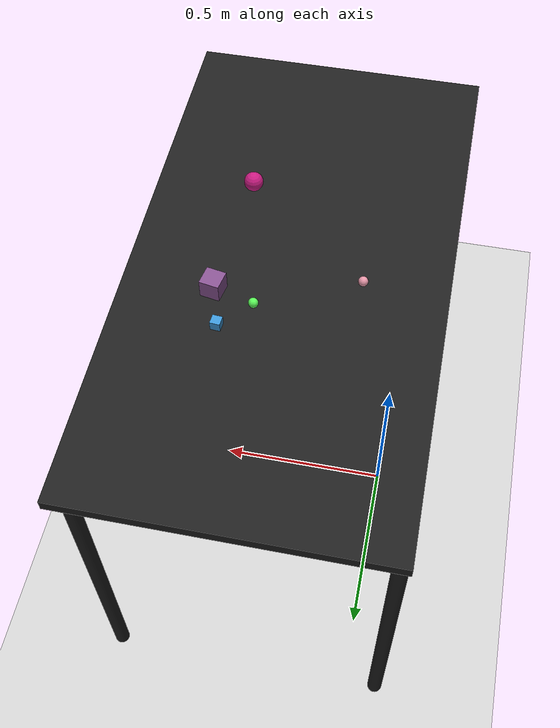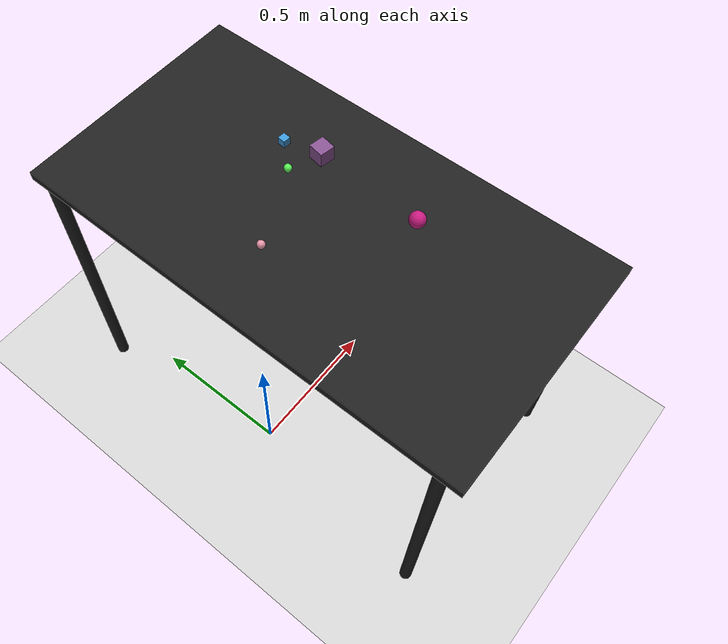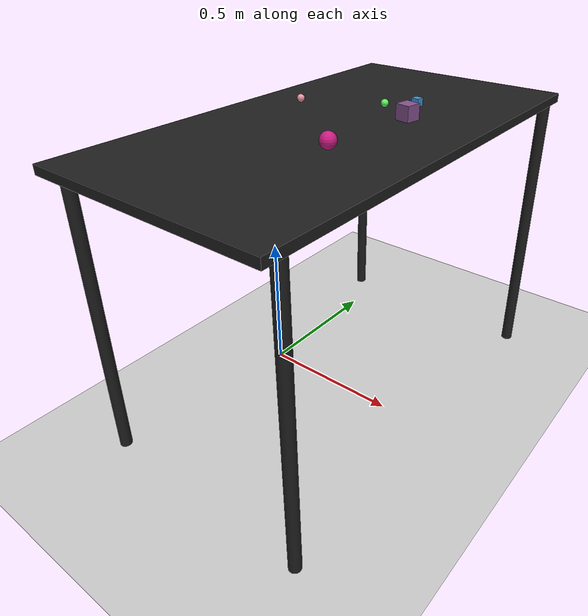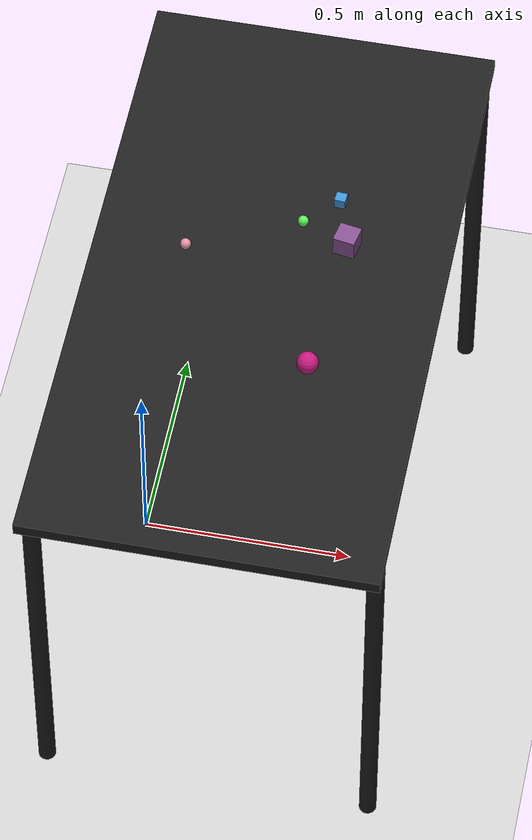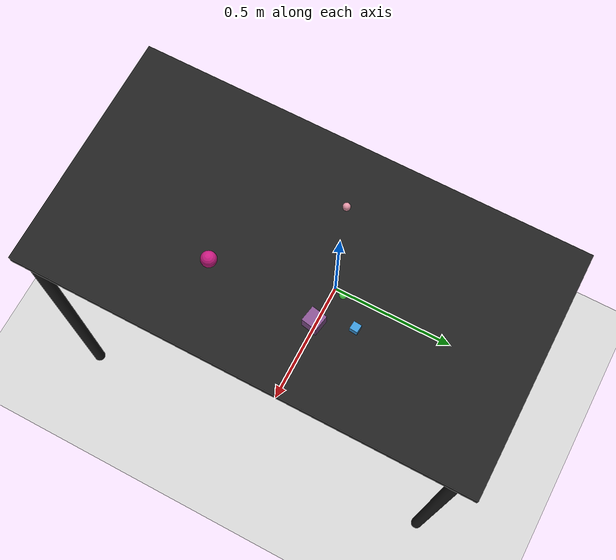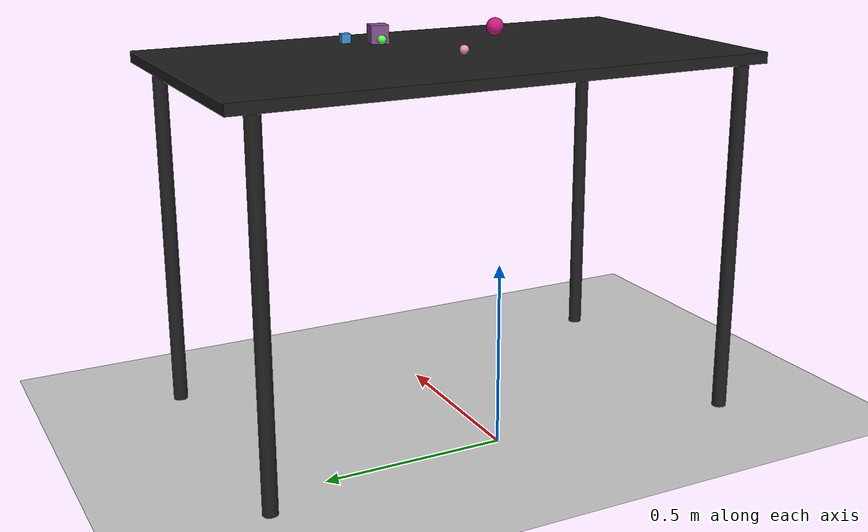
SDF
<?xml version="1.0" ?>
<sdf version="1.6">
  <world name="arm_world">
    <plugin filename="gz-sim-physics-system" name="gz::sim::systems::Physics">
      <engine>
        <filename>libgz-physics-bullet-featherstone-plugin.so</filename>
      </engine>
    </plugin>
    <plugin filename="gz-sim-user-commands-system" name="gz::sim::systems::UserCommands"/>
    <plugin filename="gz-sim-scene-broadcaster-system" name="gz::sim::systems::SceneBroadcaster"/>
    <plugin filename="gz-sim-sensors-system" name="gz::sim::systems::Sensors">
      <render_engine>ogre2</render_engine>
    </plugin>
    <gravity>0.0 0.0 -9.8</gravity>
    <scene>
      <shadows>false</shadows>
    </scene>
    <gui>
      <camera name="user_camera">
        <pose>0.75 -0.75 1.4 0 0.29 2.21</pose>
      </camera>
    </gui>
    <include>
      <uri>https://fuel.gazebosim.org/1.0/OpenRobotics/models/Sun</uri>
    </include>
    <model name="table">
      <static>true</static>
      <include>
        <uri>model://table</uri>
      </include>
      <pose>0.29 0 0 0 0 1.5708</pose>
    </model>
    <model name="ground_plane">
      <static>true</static>
      <link name="link">
        <collision name="collision">
          <geometry>
            <plane>
              <normal>0 0 1</normal>
            </plane>
          </geometry>
          <surface>
            <friction>
              <ode>
                <mu>1.0</mu>
                <mu2>1.0</mu2>
              </ode>
            </friction>
          </surface>
        </collision>
        <visual name="visual">
          <geometry>
            <plane>
              <normal>0 0 1</normal>
              <size>100 100</size>
            </plane>
          </geometry>
          <material>
            <ambient>0.8 0.8 0.8 1</ambient>
            <diffuse>0.8 0.8 0.8 1</diffuse>
            <specular>0.8 0.8 0.8 1</specular>
          </material>
        </visual>
      </link>
    </model>
    <model name="sphere_m_0">
      <pose>0.433 -0.224 1.05 0 0 3.58</pose>
      <link name="sphere_m_0_link">
        <collision name="sphere_m_0_collision">
          <geometry>
            <sphere>
              <radius>0.025</radius>
            </sphere>
          </geometry>
        </collision>
        <visual name="sphere_m_0_visual">
          <geometry>
            <sphere>
              <radius>0.025</radius>
            </sphere>
          </geometry>
          <material>
            <ambient>0.78 0.1 0.5 1</ambient>
            <diffuse>0.78 0.1 0.5 1</diffuse>
          </material>
        </visual>
        <velocity_decay>
          <linear>1</linear>
          <angular>1</angular>
        </velocity_decay>
      </link>
    </model>
    <model name="cube_m_1">
      <pose>0.456 0.129 1.05 0 0 2.96</pose>
      <link name="cube_m_1_link">
        <collision name="cube_m_1_collision">
          <geometry>
            <box>
              <size>0.05 0.05 0.05</size>
            </box>
          </geometry>
        </collision>
        <visual name="cube_m_1_visual">
          <geometry>
            <box>
              <size>0.05 0.05 0.05</size>
            </box>
          </geometry>
          <material>
            <ambient>0.52 0.32 0.56 1</ambient>
            <diffuse>0.52 0.32 0.56 1</diffuse>
          </material>
        </visual>
        <velocity_decay>
          <linear>1</linear>
          <angular>1</angular>
        </velocity_decay>
      </link>
    </model>
    <model name="cube_s_2">
      <pose>0.421 0.241 1.05 0 0 3.06</pose>
      <link name="cube_s_2_link">
        <collision name="cube_s_2_collision">
          <geometry>
            <box>
              <size>0.025 0.025 0.025</size>
            </box>
          </geometry>
        </collision>
        <visual name="cube_s_2_visual">
          <geometry>
            <box>
              <size>0.025 0.025 0.025</size>
            </box>
          </geometry>
          <material>
            <ambient>0.23 0.58 0.83 1</ambient>
            <diffuse>0.23 0.58 0.83 1</diffuse>
          </material>
        </visual>
        <velocity_decay>
          <linear>1</linear>
          <angular>1</angular>
        </velocity_decay>
      </link>
    </model>
    <model name="sphere_s_3">
      <pose>0.103 0.051 1.05 0 0 1.11</pose>
      <link name="sphere_s_3_link">
        <collision name="sphere_s_3_collision">
          <geometry>
            <sphere>
              <radius>0.0125</radius>
            </sphere>
          </geometry>
        </collision>
        <visual name="sphere_s_3_visual">
          <geometry>
            <sphere>
              <radius>0.0125</radius>
            </sphere>
          </geometry>
          <material>
            <ambient>0.89 0.58 0.65 1</ambient>
            <diffuse>0.89 0.58 0.65 1</diffuse>
          </material>
        </visual>
        <velocity_decay>
          <linear>1</linear>
          <angular>1</angular>
        </velocity_decay>
      </link>
    </model>
    <model name="sphere_s_4">
      <pose>0.349 0.166 1.05 0 0 4.85</pose>
      <link name="sphere_s_4_link">
        <collision name="sphere_s_4_collision">
          <geometry>
            <sphere>
              <radius>0.0125</radius>
            </sphere>
          </geometry>
        </collision>
        <visual name="sphere_s_4_visual">
          <geometry>
            <sphere>
              <radius>0.0125</radius>
            </sphere>
          </geometry>
          <material>
            <ambient>0.35 0.96 0.34 1</ambient>
            <diffuse>0.35 0.96 0.34 1</diffuse>
          </material>
        </visual>
        <velocity_decay>
          <linear>1</linear>
          <angular>1</angular>
        </velocity_decay>
      </link>
    </model>
  </world>
</sdf>

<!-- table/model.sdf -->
<sdf version="1.5">
  <model name="table">
    <static>true</static>
    <link name="link">
      <collision name="surface">
        <pose>0 0 1.0 0 0 0</pose>
        <geometry>
          <box>
            <size>1.5 0.8 0.03</size>
          </box>
        </geometry>
        <surface>
          <friction>
            <ode>
              <mu>0.6</mu>
              <mu2>0.6</mu2>
            </ode>
          </friction>
        </surface>
      </collision>
      <visual name="surface">
        <pose>0 0 1.0 0 0 0</pose>
        <geometry>
          <box>
            <size>1.5 0.8 0.03</size>
          </box>
        </geometry>
        <material>
          <script>
            <uri>file://media/materials/scripts/gazebo.material</uri>
            <name>Gazebo/Black</name>
          </script>
        </material>
      </visual>
      <collision name="front_left_leg">
        <pose>0.68 0.38 0.5 0 0 0</pose>
        <geometry>
          <cylinder>
            <radius>0.02</radius>
            <length>1.0</length>
          </cylinder>
        </geometry>
      </collision>
      <visual name="front_left_leg">
        <pose>0.68 0.38 0.5 0 0 0</pose>
        <geometry>
          <cylinder>
            <radius>0.02</radius>
            <length>1.0</length>
          </cylinder>
        </geometry>
        <material>
          <script>
            <uri>file://media/materials/scripts/gazebo.material</uri>
            <name>Gazebo/Black</name>
          </script>
        </material>
      </visual>
      <collision name="front_right_leg">
        <pose>0.68 -0.38 0.5 0 0 0</pose>
        <geometry>
          <cylinder>
            <radius>0.02</radius>
            <length>1.0</length>
          </cylinder>
        </geometry>
      </collision>
      <visual name="front_right_leg">
        <pose>0.68 -0.38 0.5 0 0 0</pose>
        <geometry>
          <cylinder>
            <radius>0.02</radius>
            <length>1.0</length>
          </cylinder>
        </geometry>
        <material>
          <script>
            <uri>file://media/materials/scripts/gazebo.material</uri>
            <name>Gazebo/Black</name>
          </script>
        </material>
      </visual>
      <collision name="back_right_leg">
        <pose>-0.68 -0.38 0.5 0 0 0</pose>
        <geometry>
          <cylinder>
            <radius>0.02</radius>
            <length>1.0</length>
          </cylinder>
        </geometry>
      </collision>
      <visual name="back_right_leg">
        <pose>-0.68 -0.38 0.5 0 0 0</pose>
        <geometry>
          <cylinder>
            <radius>0.02</radius>
            <length>1.0</length>
          </cylinder>
        </geometry>
        <material>
          <script>
            <uri>file://media/materials/scripts/gazebo.material</uri>
            <name>Gazebo/Black</name>
          </script>
        </material>
      </visual>
      <collision name="back_left_leg">
        <pose>-0.68 0.38 0.5 0 0 0</pose>
        <geometry>
          <cylinder>
            <radius>0.02</radius>
            <length>1.0</length>
          </cylinder>
        </geometry>
      </collision>
      <visual name="back_left_leg">
        <pose>-0.68 0.38 0.5 0 0 0</pose>
        <geometry>
          <cylinder>
            <radius>0.02</radius>
            <length>1.0</length>
          </cylinder>
        </geometry>
        <material>
          <script>
            <uri>file://media/materials/scripts/gazebo.material</uri>
            <name>Gazebo/Black</name>
          </script>
        </material>
      </visual>
    </link>
  </model>
</sdf>
